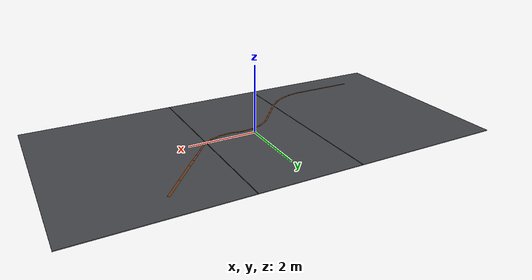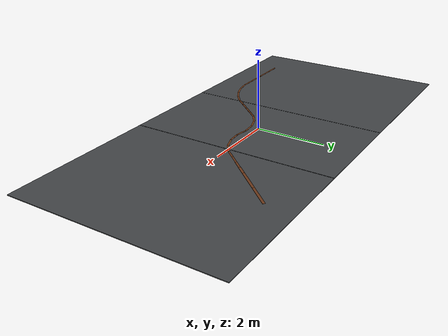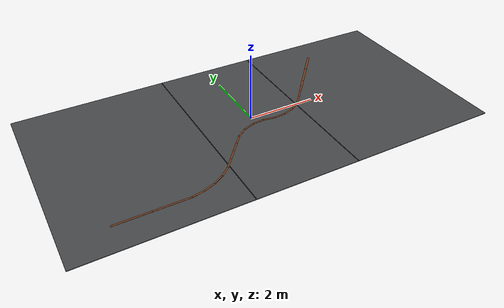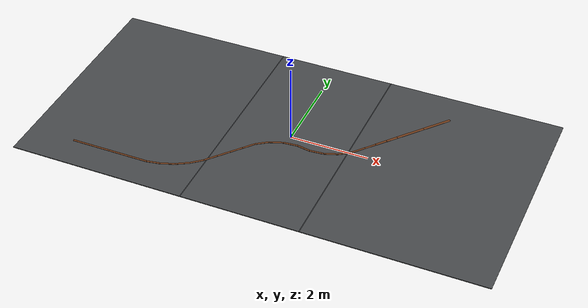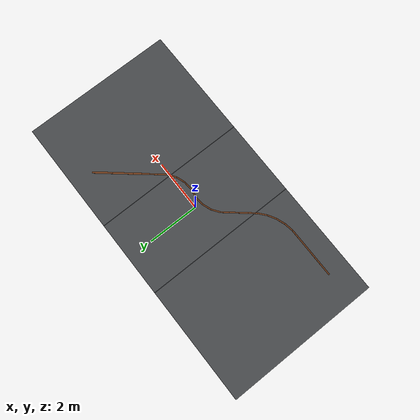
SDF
<sdf version='1.6'>
  <world name='weld_track_world'>
    <include>
      <uri>model://sun</uri>
    </include>

    <scene>
      <ambient>0.38 0.38 0.38 1</ambient>
      <background>0.60 0.61 0.63 1</background>
      <shadows>true</shadows>
    </scene>

    <physics type='ode'>
      <max_step_size>0.001</max_step_size>
      <real_time_factor>1.0</real_time_factor>
      <real_time_update_rate>1000</real_time_update_rate>
    </physics>

    <model name='ship_plate_deck'>
      <static>true</static>
      <link name='deck_link'>
        <collision name='deck_collision'>
          <pose>0 0 -0.01 0 0 0</pose>
          <geometry>
            <box>
              <size>12 6 0.02</size>
            </box>
          </geometry>
          <surface>
            <friction>
              <ode>
                <mu>100</mu>
                <mu2>50</mu2>
              </ode>
            </friction>
          </surface>
        </collision>

        <visual name='deck_visual'>
          <pose>0 0 -0.01 0 0 0</pose>
          <geometry>
            <box>
              <size>12 6 0.02</size>
            </box>
          </geometry>
          <material>
            <ambient>0.26 0.27 0.28 1</ambient>
            <diffuse>0.26 0.27 0.28 1</diffuse>
            <specular>0.01 0.01 0.01 1</specular>
            <emissive>0 0 0 1</emissive>
          </material>
        </visual>

        <visual name='panel_joint_1'>
          <pose>-1.5 0 0.0001 0 0 1.5708</pose>
          <geometry>
            <box>
              <size>6.0 0.02 0.0002</size>
            </box>
          </geometry>
          <material>
            <ambient>0.18 0.19 0.20 1</ambient>
            <diffuse>0.18 0.19 0.20 1</diffuse>
            <specular>0 0 0 1</specular>
          </material>
        </visual>

        <visual name='panel_joint_2'>
          <pose>1.5 0 0.0001 0 0 1.5708</pose>
          <geometry>
            <box>
              <size>6.0 0.02 0.0002</size>
            </box>
          </geometry>
          <material>
            <ambient>0.18 0.19 0.20 1</ambient>
            <diffuse>0.18 0.19 0.20 1</diffuse>
            <specular>0 0 0 1</specular>
          </material>
        </visual>
      </link>
    </model>

    <model name='weld_seam_track'>
      <static>true</static>
      <link name='seam_link'>
        <visual name='seam_01'>
          <pose>-4.3 -2.2 0.002 0 0 0</pose>
          <geometry><box><size>1.0 0.05 0.004</size></box></geometry>
          <material><ambient>0.28 0.15 0.07 1</ambient><diffuse>0.42 0.22 0.10 1</diffuse><specular>0.005 0.005 0.005 1</specular></material>
        </visual>
        <visual name='seam_02'>
          <pose>-3.3 -2.2 0.002 0 0 0</pose>
          <geometry><box><size>1.0 0.05 0.004</size></box></geometry>
          <material><ambient>0.28 0.15 0.07 1</ambient><diffuse>0.42 0.22 0.10 1</diffuse><specular>0.005 0.005 0.005 1</specular></material>
        </visual>
        <visual name='seam_03'>
          <pose>-2.628 -2.170 0.002 0 0 0.174533</pose>
          <geometry><box><size>0.35 0.05 0.004</size></box></geometry>
          <material><ambient>0.28 0.15 0.07 1</ambient><diffuse>0.42 0.22 0.10 1</diffuse><specular>0.005 0.005 0.005 1</specular></material>
        </visual>
        <visual name='seam_04'>
          <pose>-2.291 -2.079 0.002 0 0 0.349066</pose>
          <geometry><box><size>0.35 0.05 0.004</size></box></geometry>
          <material><ambient>0.28 0.15 0.07 1</ambient><diffuse>0.42 0.22 0.10 1</diffuse><specular>0.005 0.005 0.005 1</specular></material>
        </visual>
        <visual name='seam_05'>
          <pose>-1.975 -1.932 0.002 0 0 0.523599</pose>
          <geometry><box><size>0.35 0.05 0.004</size></box></geometry>
          <material><ambient>0.28 0.15 0.07 1</ambient><diffuse>0.42 0.22 0.10 1</diffuse><specular>0.005 0.005 0.005 1</specular></material>
        </visual>
        <visual name='seam_06'>
          <pose>-1.689 -1.732 0.002 0 0 0.698132</pose>
          <geometry><box><size>0.35 0.05 0.004</size></box></geometry>
          <material><ambient>0.28 0.15 0.07 1</ambient><diffuse>0.42 0.22 0.10 1</diffuse><specular>0.005 0.005 0.005 1</specular></material>
        </visual>
        <visual name='seam_07'>
          <pose>-1.443 -1.485 0.002 0 0 0.872665</pose>
          <geometry><box><size>0.35 0.05 0.004</size></box></geometry>
          <material><ambient>0.28 0.15 0.07 1</ambient><diffuse>0.42 0.22 0.10 1</diffuse><specular>0.005 0.005 0.005 1</specular></material>
        </visual>
        <visual name='seam_08'>
          <pose>-1.221 -1.221 0.002 0 0 0.872665</pose>
          <geometry><box><size>0.34 0.05 0.004</size></box></geometry>
          <material><ambient>0.28 0.15 0.07 1</ambient><diffuse>0.42 0.22 0.10 1</diffuse><specular>0.005 0.005 0.005 1</specular></material>
        </visual>
        <visual name='seam_09'>
          <pose>-1.006 -0.965 0.002 0 0 0.872665</pose>
          <geometry><box><size>0.33 0.05 0.004</size></box></geometry>
          <material><ambient>0.28 0.15 0.07 1</ambient><diffuse>0.42 0.22 0.10 1</diffuse><specular>0.005 0.005 0.005 1</specular></material>
        </visual>
        <visual name='seam_10'>
          <pose>-0.793 -0.712 0.002 0 0 0.872665</pose>
          <geometry><box><size>0.33 0.05 0.004</size></box></geometry>
          <material><ambient>0.28 0.15 0.07 1</ambient><diffuse>0.42 0.22 0.10 1</diffuse><specular>0.005 0.005 0.005 1</specular></material>
        </visual>
        <visual name='seam_11'>
          <pose>-0.544 -0.485 0.002 0 0 0.610865</pose>
          <geometry><box><size>0.35 0.05 0.004</size></box></geometry>
          <material><ambient>0.28 0.15 0.07 1</ambient><diffuse>0.42 0.22 0.10 1</diffuse><specular>0.005 0.005 0.005 1</specular></material>
        </visual>
        <visual name='seam_12'>
          <pose>-0.236 -0.325 0.002 0 0 0.349066</pose>
          <geometry><box><size>0.35 0.05 0.004</size></box></geometry>
          <material><ambient>0.28 0.15 0.07 1</ambient><diffuse>0.42 0.22 0.10 1</diffuse><specular>0.005 0.005 0.005 1</specular></material>
        </visual>
        <visual name='seam_13'>
          <pose>0.102 -0.250 0.002 0 0 0.087266</pose>
          <geometry><box><size>0.35 0.05 0.004</size></box></geometry>
          <material><ambient>0.28 0.15 0.07 1</ambient><diffuse>0.42 0.22 0.10 1</diffuse><specular>0.005 0.005 0.005 1</specular></material>
        </visual>
        <visual name='seam_14'>
          <pose>0.449 -0.265 0.002 0 0 -0.174533</pose>
          <geometry><box><size>0.35 0.05 0.004</size></box></geometry>
          <material><ambient>0.28 0.15 0.07 1</ambient><diffuse>0.42 0.22 0.10 1</diffuse><specular>0.005 0.005 0.005 1</specular></material>
        </visual>
        <visual name='seam_15'>
          <pose>0.796 -0.280 0.002 0 0 0.087266</pose>
          <geometry><box><size>0.35 0.05 0.004</size></box></geometry>
          <material><ambient>0.28 0.15 0.07 1</ambient><diffuse>0.42 0.22 0.10 1</diffuse><specular>0.005 0.005 0.005 1</specular></material>
        </visual>
        <visual name='seam_16'>
          <pose>1.135 -0.205 0.002 0 0 0.349066</pose>
          <geometry><box><size>0.35 0.05 0.004</size></box></geometry>
          <material><ambient>0.28 0.15 0.07 1</ambient><diffuse>0.42 0.22 0.10 1</diffuse><specular>0.005 0.005 0.005 1</specular></material>
        </visual>
        <visual name='seam_17'>
          <pose>1.442 -0.045 0.002 0 0 0.610865</pose>
          <geometry><box><size>0.35 0.05 0.004</size></box></geometry>
          <material><ambient>0.28 0.15 0.07 1</ambient><diffuse>0.42 0.22 0.10 1</diffuse><specular>0.005 0.005 0.005 1</specular></material>
        </visual>
        <visual name='seam_18'>
          <pose>1.698 0.190 0.002 0 0 0.872665</pose>
          <geometry><box><size>0.35 0.05 0.004</size></box></geometry>
          <material><ambient>0.28 0.15 0.07 1</ambient><diffuse>0.42 0.22 0.10 1</diffuse><specular>0.005 0.005 0.005 1</specular></material>
        </visual>
        <visual name='seam_19'>
          <pose>1.907 0.439 0.002 0 0 0.872665</pose>
          <geometry><box><size>0.30 0.05 0.004</size></box></geometry>
          <material><ambient>0.28 0.15 0.07 1</ambient><diffuse>0.42 0.22 0.10 1</diffuse><specular>0.005 0.005 0.005 1</specular></material>
        </visual>
        <visual name='seam_20'>
          <pose>2.100 0.669 0.002 0 0 0.872665</pose>
          <geometry><box><size>0.30 0.06 0.004</size></box></geometry>
          <material><ambient>0.28 0.15 0.07 1</ambient><diffuse>0.42 0.22 0.10 1</diffuse><specular>0.005 0.005 0.005 1</specular></material>
        </visual>
        <visual name='seam_21'>
          <pose>2.293 0.898 0.002 0 0 0.872665</pose>
          <geometry><box><size>0.30 0.07 0.004</size></box></geometry>
          <material><ambient>0.28 0.15 0.07 1</ambient><diffuse>0.42 0.22 0.10 1</diffuse><specular>0.005 0.005 0.005 1</specular></material>
        </visual>
        <visual name='seam_22'>
          <pose>2.630 1.301 0.002 0 0 0.872665</pose>
          <geometry><box><size>0.75 0.07 0.004</size></box></geometry>
          <material><ambient>0.28 0.15 0.07 1</ambient><diffuse>0.42 0.22 0.10 1</diffuse><specular>0.005 0.005 0.005 1</specular></material>
        </visual>
        <visual name='seam_23'>
          <pose>3.112 1.875 0.002 0 0 0.872665</pose>
          <geometry><box><size>0.75 0.07 0.004</size></box></geometry>
          <material><ambient>0.28 0.15 0.07 1</ambient><diffuse>0.42 0.22 0.10 1</diffuse><specular>0.005 0.005 0.005 1</specular></material>
        </visual>
      </link>
    </model>
  </world>
</sdf>
